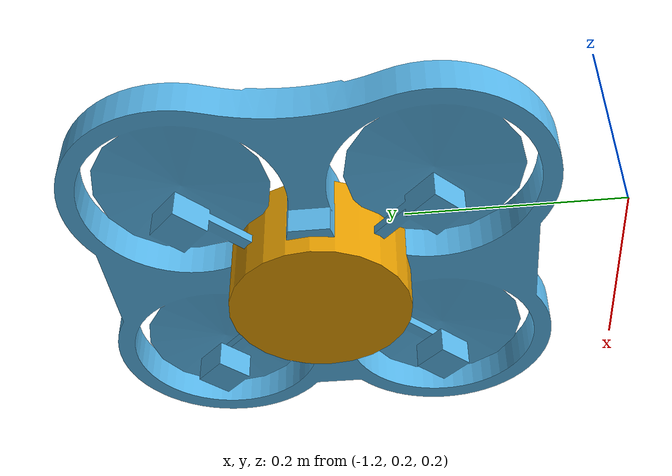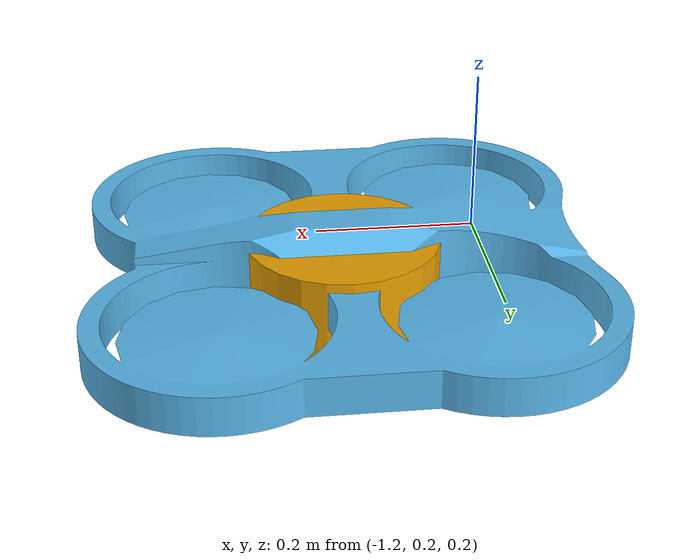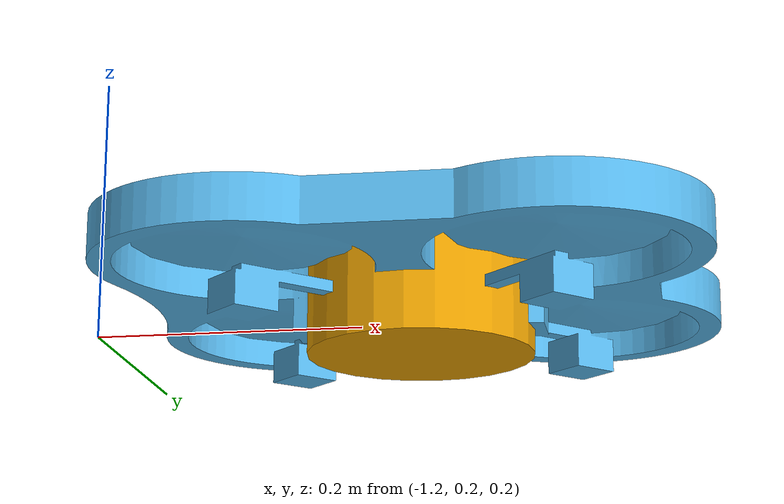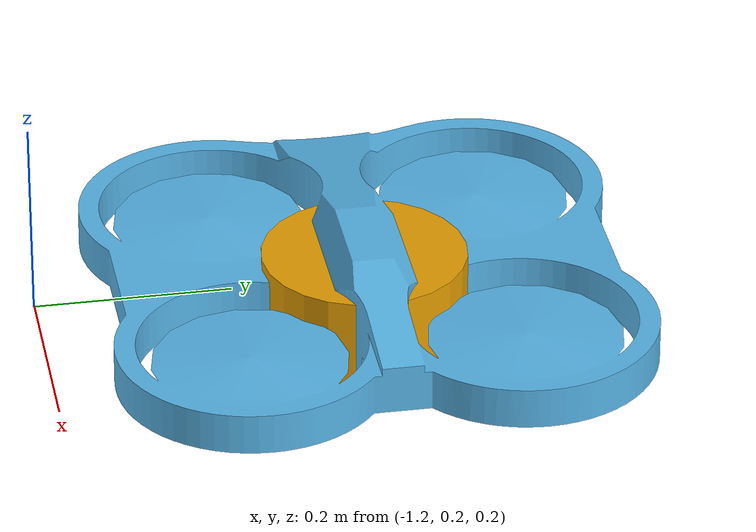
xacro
<?xml version="1.0"?>

<robot
  name="quadrotor"
  xmlns:xacro="http://ros.org/wiki/xacro"

>

<xacro:property name="Xpos" value="-1.0"/>
<xacro:property name="Ypos" value="0.5"/>
<xacro:property name="Zpos" value="0.3"/>

  <link name="test_link">
    <visual>
      <origin xyz="${Xpos} ${Ypos} ${Zpos}" rpy="0 0 0" />
      <geometry>
        <cylinder length="0.1" radius="0.1"/>
      </geometry>
    </visual>
  </link>

  <link name="odom">
      <inertial>
        <mass value="1.477" />
        <origin xyz="0 0 0" rpy="0 0 0" />
        <inertia ixx="0.01152" ixy="0.0" ixz="0.0" iyy="0.01152" iyz="0.0" izz="0.0218" />
      </inertial>

      <visual>
        <origin xyz="${Xpos} ${Ypos} ${Zpos}" rpy="0 0 0" />
        <geometry>
          <mesh filename="package://drone_planning/meshes/quadrotor/quadrotor_2.dae"/>
        </geometry>
      </visual>

      <collision>
        <origin xyz="${Xpos} ${Ypos} ${Zpos}" rpy="0 0 0" />
        <geometry>
          <mesh filename="package://drone_planning/meshes/quadrotor/quadrotor_2.obj"/>
        </geometry>
      </collision>

    </link>

  <joint name="test_joint" type="fixed">
    <parent link="test_link"/>
    <child link="odom"/>
  </joint>

</robot>
